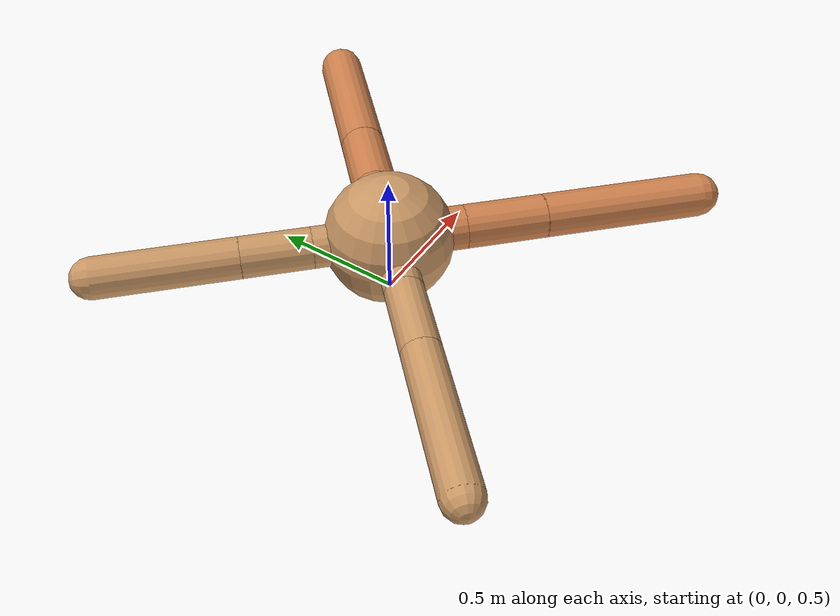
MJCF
<?xml version="1.0" ?>
<mujoco model="ant">

	<compiler angle="degree" coordinate="local" inertiafromgeom="true"/>

	<option integrator="RK4" timestep="0.01"/>

	<custom>

		<numeric data="0.0 0.0 0.55 1.0 0.0 0.0 0.0 0.0 1.0 0.0 -1.0 0.0 -1.0 0.0 1.0" name="init_qpos"/>

	</custom>

	<default>

		<joint armature="1" damping="1" limited="true"/>

		<geom conaffinity="0" condim="3" density="5.0" friction="1.5 0.1 0.1" margin="0.01" rgba="0.8 0.6 0.4 1"/>

	</default>

	<worldbody>

		<body name="torso" pos="0 0 0.75">

			<geom name="torso_geom" pos="0 0 0" size="0.242305746347143" type="sphere"/>

			<!--joint armature="0" damping="0" limited="false" margin="0.01" name="root" pos="0 0 0" type="free"/-->

			<body name="front_left_leg" pos="0 0 0">

				<geom fromto="0 0 0 0.2 0.2 0" name="aux_1_geom" size="0.08740072445148502" type="capsule" rgba=".8 .5 .3 1"/>

				<body name="aux_1" pos="0.2 0.2 0">

					<joint axis="0 0 1" name="hip_1" pos="0.0 0.0 0.0" range="-40 40" type="hinge"/>

					<geom fromto="0 0 0 0.20131534996833014 0.20131534996833014 0" name="left_leg_geom" size="0.08740072445148502" type="capsule" rgba=".8 .5 .3 1"/>

					<body pos="0.20131534996833014 0.20131534996833014 0" name="front_left_foot">

						<joint axis="-1 1 0" name="ankle_1" pos="0.0 0.0 0.0" range="30 100" type="hinge"/>

						<geom fromto="0 0 0 0.4026306999366603 0.4026306999366603 0" name="left_ankle_geom" size="0.08740072445148502" type="capsule" rgba=".8 .5 .3 1"/>

					</body>

				</body>

			</body>

			<body name="front_right_leg" pos="0 0 0">

				<geom fromto="0 0 0 -0.2 0.2 0" name="aux_2_geom" size="0.07701567876875691" type="capsule"/>

				<body name="aux_2" pos="-0.2 0.2 0">

					<joint axis="0 0 1" name="hip_2" pos="0.0 0.0 0.0" range="-40 40" type="hinge"/>

					<geom fromto="0 0 0 -0.18442444851982032 0.18442444851982032 0" name="right_leg_geom" size="0.07701567876875691" type="capsule"/>

					<body pos="-0.18442444851982032 0.18442444851982032 0" name="front_right_foot">

						<joint axis="1 1 0" name="ankle_2" pos="0.0 0.0 0.0" range="-100 -30" type="hinge"/>

						<geom fromto="0 0 0 -0.36884889703964063 0.36884889703964063 0" name="right_ankle_geom" size="0.07701567876875691" type="capsule"/>

					</body>

				</body>

			</body>

			<body name="left_back_leg" pos="0 0 0">

				<geom fromto="0 0 0 -0.2 -0.2 0" name="aux_3_geom" size="0.07279978662256027" type="capsule"/>

				<body name="aux_3" pos="-0.2 -0.2 0">

					<joint axis="0 0 1" name="hip_3" pos="0.0 0.0 0.0" range="-40 40" type="hinge"/>

					<geom fromto="0 0 0 -0.19876448976944747 -0.19876448976944747 0" name="back_leg_geom" size="0.07279978662256027" type="capsule"/>

					<body pos="-0.19876448976944747 -0.19876448976944747 0" name="left_back_foot">

						<joint axis="-1 1 0" name="ankle_3" pos="0.0 0.0 0.0" range="-100 -30" type="hinge"/>

						<geom fromto="0 0 0 -0.39752897953889493 -0.39752897953889493 0" name="third_ankle_geom" size="0.07279978662256027" type="capsule"/>

					</body>

				</body>

			</body>

			<body name="right_back_leg" pos="0 0 0">

				<geom fromto="0 0 0 0.2 -0.2 0" name="aux_4_geom" size="0.08242506221763671" type="capsule" rgba=".8 .5 .3 1"/>

				<body name="aux_4" pos="0.2 -0.2 0">

					<joint axis="0 0 1" name="hip_4" pos="0.0 0.0 0.0" range="-40 40" type="hinge"/>

					<geom fromto="0 0 0 0.2161944261497594 -0.2161944261497594 0" name="rightback_leg_geom" size="0.08242506221763671" type="capsule" rgba=".8 .5 .3 1"/>

					<body pos="0.2161944261497594 -0.2161944261497594 0" name="right_back_foot">

						<joint axis="1 1 0" name="ankle_4" pos="0.0 0.0 0.0" range="30 100" type="hinge"/>

						<geom fromto="0 0 0 0.4323888522995188 -0.4323888522995188 0" name="fourth_ankle_geom" size="0.08242506221763671" type="capsule" rgba=".8 .5 .3 1"/>

					</body>

				</body>

			</body>

		</body>

	</worldbody>

	<actuator>

		<motor ctrllimited="true" ctrlrange="-1.0 1.0" joint="hip_4" gear="150"/>

		<motor ctrllimited="true" ctrlrange="-1.0 1.0" joint="ankle_4" gear="150"/>

		<motor ctrllimited="true" ctrlrange="-1.0 1.0" joint="hip_1" gear="150"/>

		<motor ctrllimited="true" ctrlrange="-1.0 1.0" joint="ankle_1" gear="150"/>

		<motor ctrllimited="true" ctrlrange="-1.0 1.0" joint="hip_2" gear="150"/>

		<motor ctrllimited="true" ctrlrange="-1.0 1.0" joint="ankle_2" gear="150"/>

		<motor ctrllimited="true" ctrlrange="-1.0 1.0" joint="hip_3" gear="150"/>

		<motor ctrllimited="true" ctrlrange="-1.0 1.0" joint="ankle_3" gear="150"/>

	</actuator>

</mujoco>
